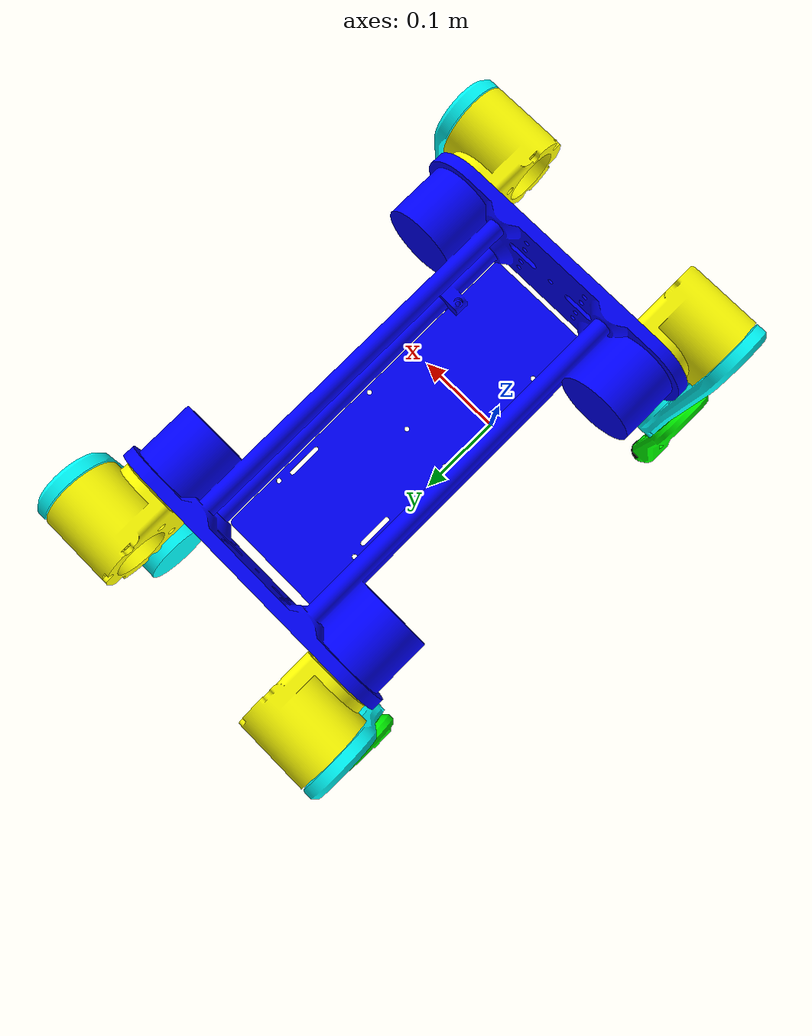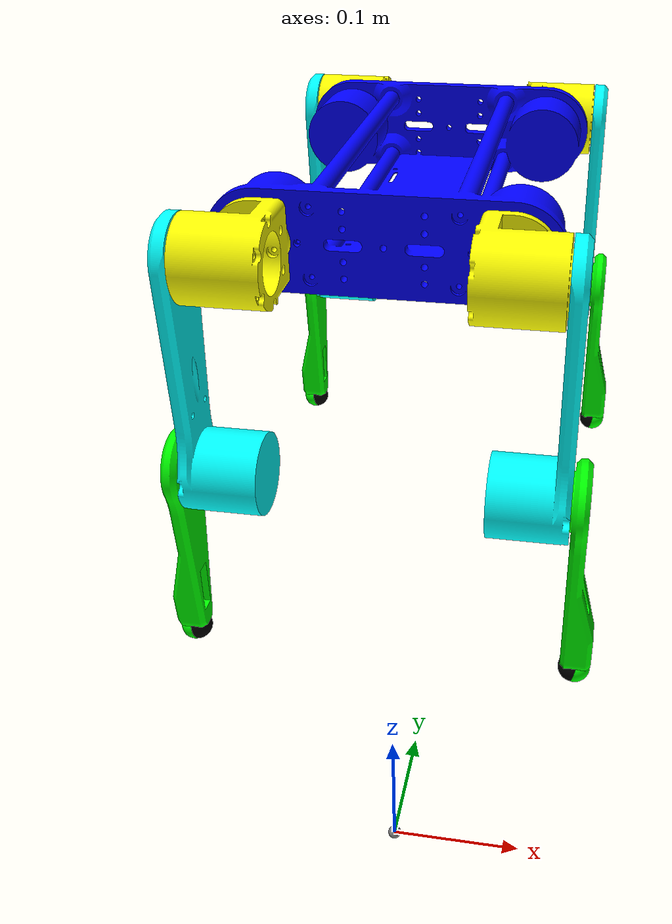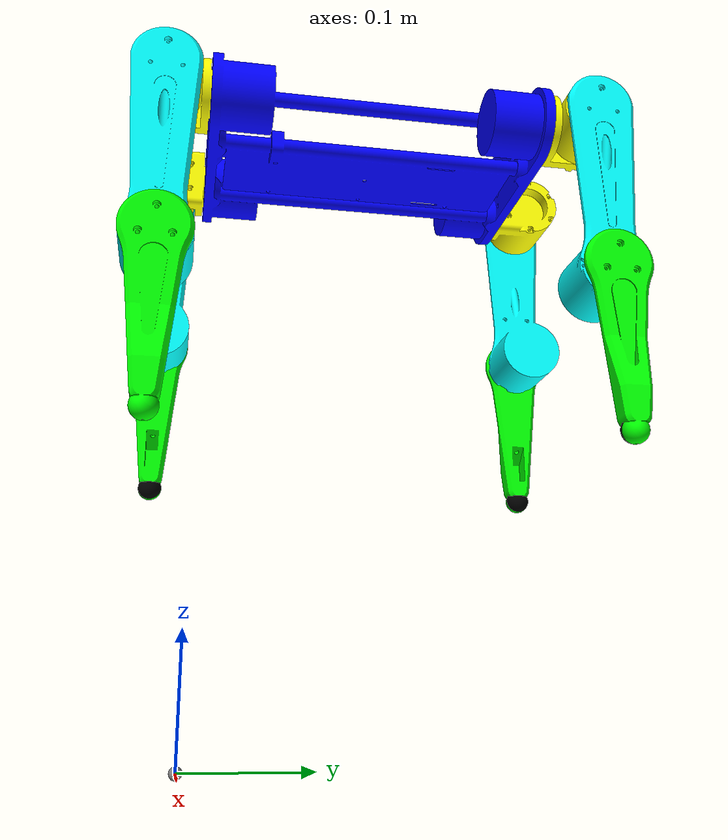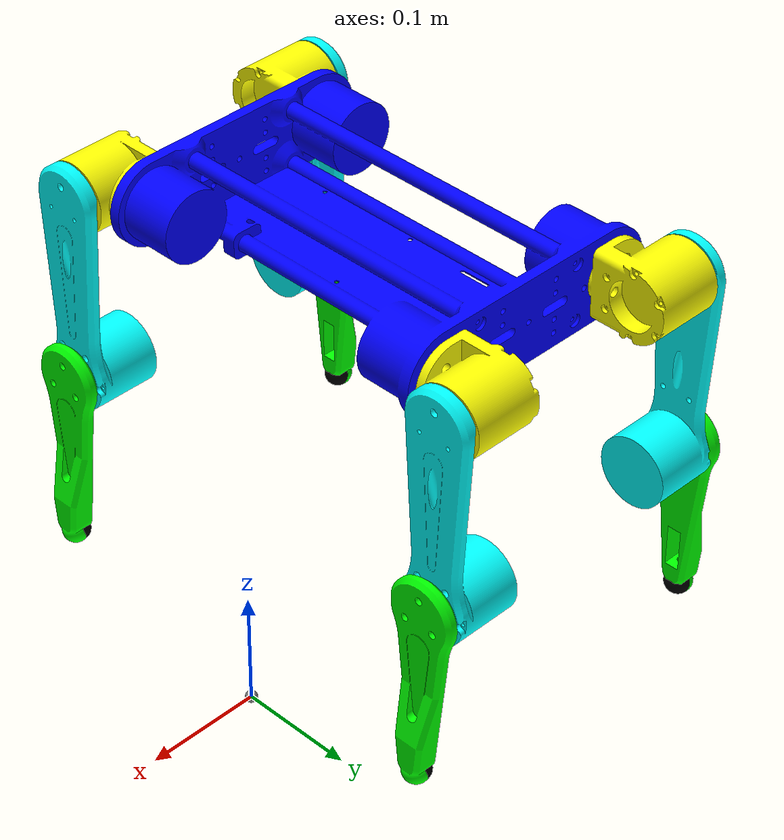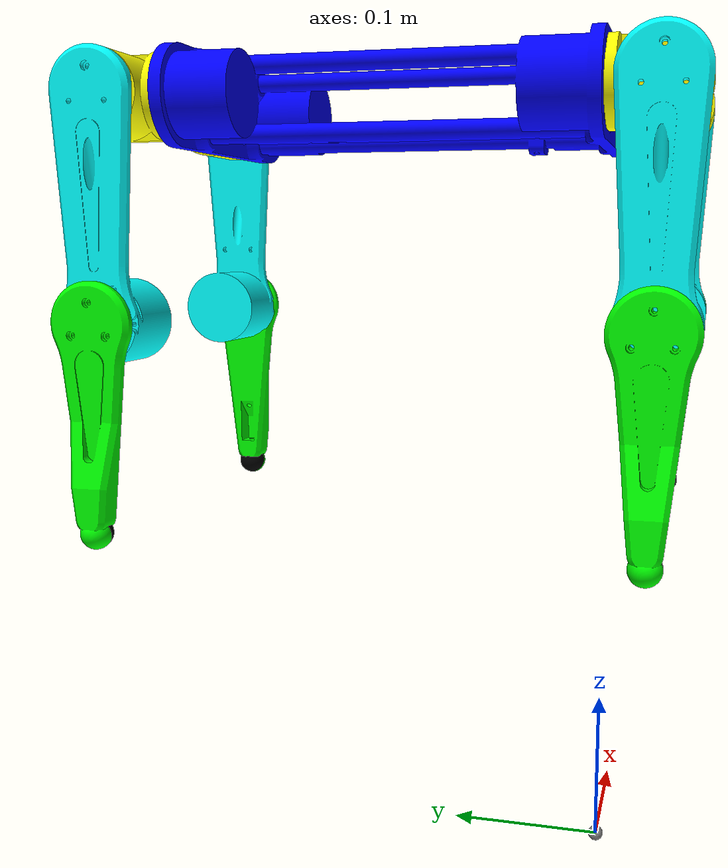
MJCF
<mujoco model="ElectroPup">
  <compiler angle="radian" meshdir="assets" texturedir="assets" autolimits="true" />

  <option timestep="0.010" />

  <visual>
    <rgba contactpoint="1 0 0 1" />

  </visual>

  <default>
    <geom type="mesh" />

    <joint range="-180 180" armature="0.01" damping="1" frictionloss="1" />

    <default class="abductor">
      <joint range="-180 180" />
    </default>

    <default class="hip_front">
      <joint range="-180 180" />
    </default>

    <default class="hip_back">
      <joint range="-180 180" />
    </default>

    <default class="knee">
      <joint range="-180 180" />
    </default>

    <default class="multi_mode_controlled_actuator">
      <general biastype="affine" gainprm="35 0 0 0 0 0 0 0 0 0" biasprm="0 -35 -0.65 0 0 0 0 0 0 0"
        ctrlrange="-10 10" />
    </default>

    <default class="abduction">
      <geom rgba="1 1 0 1" />
    </default>
    <default class="upper_leg">
      <geom rgba="0 1 1 1" />
    </default>
    <default class="lower_leg">
      <geom rgba="0 1 0 1" />
    </default>
    <default class="foot">
      <geom rgba="0 0 0 1"  solimp="0.015 1 0.031" friction="0.8 0.02 0.01" />
    </default>

  </default>

  <asset>
    <mesh file="body.stl" />
    <mesh file="abduction.stl" />
    <mesh file="upper-leg.stl" />
    <mesh file="lower-leg.stl" />
    <mesh file="foot.stl" />
  </asset>

  <worldbody>
    <site name="origin" />
    <body name="chassis">
      <freejoint />
      <camera name="track" pos="0.846 -1.465 0.916" xyaxes="0.866 0.500 0.000 -0.171 0.296 0.940"        mode="trackcom" />

      <inertial pos="0 0.1315 0" mass="2.000" diaginertia="0.048 0.019 0.062" />

      <geom pos="0 0 0.5" rgba="0 0 1 1" mesh="body" contype="0" conaffinity="0" />

      <body name="front_left" pos="0.075 0.0075 0.5" quat="1 0 0 0">
        <inertial pos="0 0 0" quat="1 0 0 0" mass="1.000" diaginertia="0.003316 0.003316 0.0001" />
        <joint class="abductor" name="front_left_abduction" axis="0 1 0" />
        <geom class="abduction" pos="0 0 0" mesh="abduction" />

        <body name="front_left_leg_assembly" pos="0.0345 -0.041 0" quat="1 0 0 0">
          <inertial pos="0 0 0" quat="0 1 0 0" mass="0.500" diaginertia="0.003316 0.003316 0.0001" />
          <joint class="hip_front" name="front_left_hip" axis="1 0 0" />
          <geom class="upper_leg" quat="-1 1 0 0" mesh="upper-leg"  />

          <body name="front_left_lower_leg" pos="0 0 -0.140" quat="1 0 0 0">
            <inertial pos="0 0 0" quat="1 0 0 0" mass="0.125" diaginertia="0.003316 0.003316 0.0001" />
            <joint class="knee" name="front_left_knee" axis="1 0 0" />
            <geom class="lower_leg" pos="0 0 0" quat="-1 1 0 0" mesh="lower-leg" />
            <geom class="foot" pos="0.020 0 -0.130" mesh="foot" />
          </body>

        </body>
      </body>

      <body name="front_right" pos="-0.075 0.0075 0.5" quat="0 0 1 0">
        <inertial pos="0 0 0" quat="1 0 0 0" mass="1.000" diaginertia="0.003316 0.003316 0.0001" />
        <joint class="abductor" name="front_right_abduction" axis="0 -1 0" />
        <geom class="abduction" pos="0 0 0" mesh="abduction" />

        <body name="front_right_leg_assembly" pos="0.0345 -0.041 0" quat="1 0 0 0">
          <inertial pos="0 0 0" quat="1 0 0 0" mass="0.500" diaginertia="0.003316 0.003316 0.0001" />
          <joint class="hip_front" name="front_right_hip" axis="1 0 0" />
          <geom class="upper_leg" quat="1 1 0 0" mesh="upper-leg" />

          <body name="front_right_lower_leg" pos="0 0 0.140" quat="1 0 0 0">
            <inertial pos="0 0 0" quat="1 0 0 0" mass="0.125" diaginertia="0.003316 0.003316 0.0001" />
            <joint class="knee" name="front_right_knee" axis="1 0 0" />
            <geom class="lower_leg" pos="0 0 0" quat="1 1 0 0" mesh="lower-leg" />
            <geom class="foot" pos="0.020 0 0.130" mesh="foot" />
          </body>

        </body>
      </body>

      <body name="back_left" pos="0.075 0.263 0.5" quat="0 1 0 0">
        <inertial pos="0 0 0" quat="1 0 0 0" mass="1.000" diaginertia="0.003316 0.003316 0.0001" />
        <joint class="abductor" name="back_left_abduction" axis="0 -1 0" />
        <geom class="abduction" pos="0 0 0" mesh="abduction" />

        <body name="back_left_leg_assembly" pos="0.0345 -0.041 0" quat="0 1 0 0">
          <inertial pos="0 0 0" quat="1 0 0 0" mass="0.500" diaginertia="0.003316 0.003316 0.0001" />
          <joint class="hip_back" name="back_left_hip" axis="1 0 0" />
          <geom class="upper_leg" quat="-1 1 0 0" mesh="upper-leg" />

          <body name="back_left_lower_leg" pos="0 0 -0.140" quat="1 0 0 0">
            <inertial pos="0 0 0" quat="1 0 0 0" mass="0.125" diaginertia="0.003316 0.003316 0.0001" />
            <joint class="knee" name="back_left_knee" axis="1 0 0" />
            <geom class="lower_leg" pos="0 0 0" quat="-1 1 0 0" mesh="lower-leg" />
            <geom class="foot" pos="0.020 0 -0.130" mesh="foot" />
          </body>

        </body>
      </body>

      <body name="back_right" pos="-0.075 0.263 0.5" quat="0 0 0 1">
        <inertial pos="0 0 0" quat="1 0 0 0" mass="1.000" diaginertia="0.003316 0.003316 0.0001" />
        <joint class="abductor" name="back_right_abduction" axis="0 1 0" />
        <geom class="abduction" pos="0 0 0" mesh="abduction" />

        <body name="back_right_leg_assembly" pos="0.0345 -0.041 0" quat="0 1 0 0">
          <inertial pos="0 0 0" quat="1 0 0 0" mass="0.500" diaginertia="0.003316 0.003316 0.0001" />
          <joint class="hip_back" name="back_right_hip" axis="1 0 0" />
          <geom class="upper_leg" quat="1 1 0 0" mesh="upper-leg" />

          <body name="back_right_lower_leg" pos="0 0 0.140" quat="1 0 0 0">
            <inertial pos="0 0 0" quat="1 0 0 0" mass="0.125" diaginertia="0.003316 0.003316 0.0001" />
            <joint class="knee" name="back_right_knee" axis="1 0 0" />
            <geom class="lower_leg" pos="0 0 0" quat="1 1 0 0" mesh="lower-leg" />
            <geom class="foot" pos="0.020 0 0.130" mesh="foot" />
          </body>

        </body>
      </body>

    </body>
  </worldbody>

  <actuator>
    <general name="front_left_abduction" class="multi_mode_controlled_actuator"
      joint="front_left_abduction" />
    <general name="front_left_hip" class="multi_mode_controlled_actuator" joint="front_left_hip" />
    <general name="front_left_knee" class="multi_mode_controlled_actuator" joint="front_left_knee" />

    <general name="front_right_abduction" class="multi_mode_controlled_actuator"
      joint="front_right_abduction" />
    <general name="front_right_hip" class="multi_mode_controlled_actuator" joint="front_right_hip" />
    <general name="front_right_knee" class="multi_mode_controlled_actuator" joint="front_right_knee" />

    <general name="back_left_abduction" class="multi_mode_controlled_actuator"
      joint="back_left_abduction" />
    <general name="back_left_hip" class="multi_mode_controlled_actuator" joint="back_left_hip" />
    <general name="back_left_knee" class="multi_mode_controlled_actuator" joint="back_left_knee" />

    <general name="back_right_abduction" class="multi_mode_controlled_actuator"
      joint="back_right_abduction" />
    <general name="back_right_hip" class="multi_mode_controlled_actuator" joint="back_right_hip" />
    <general name="back_right_knee" class="multi_mode_controlled_actuator" joint="back_right_knee" />
  </actuator>

  <sensor>
    <jointpos joint="front_left_abduction" name="front_left_abduction_pos" />
    <jointpos joint="front_left_hip" name="front_left_hip_pos" />
    <jointpos joint="front_left_knee" name="front_left_knee_pos" />

    <jointpos joint="front_right_abduction" name="front_right_abduction_pos" />
    <jointpos joint="front_right_hip" name="front_right_hip_pos" />
    <jointpos joint="front_right_knee" name="front_right_knee_pos" />

    <jointpos joint="back_left_abduction" name="back_left_abduction_pos" />
    <jointpos joint="back_left_hip" name="back_left_hip_pos" />
    <jointpos joint="back_left_knee" name="back_left_knee_pos" />

    <jointpos joint="back_right_abduction" name="back_right_abduction_pos" />
    <jointpos joint="back_right_hip" name="back_right_hip_pos" />
    <jointpos joint="back_right_knee" name="back_right_knee_pos" />

    <jointvel joint="front_left_abduction" name="front_left_abduction_vel" />
    <jointvel joint="front_left_hip" name="front_left_hip_vel" />
    <jointvel joint="front_left_knee" name="front_left_knee_vel" />

    <jointpos joint="front_right_abduction" name="front_right_abduction_vel" />
    <jointpos joint="front_right_hip" name="front_right_hip_vel" />
    <jointpos joint="front_right_knee" name="front_right_knee_vel" />

    <jointvel joint="back_left_abduction" name="back_left_abduction_vel" />
    <jointvel joint="back_left_hip" name="back_left_hip_vel" />
    <jointvel joint="back_left_knee" name="back_left_knee_vel" />

    <jointvel joint="back_right_abduction" name="back_right_abduction_vel" />
    <jointvel joint="back_right_hip" name="back_right_hip_vel" />
    <jointvel joint="back_right_knee" name="back_right_knee_vel" />

    <gyro site="origin" name="gyro" />
    <accelerometer site="origin" name="accelerometer" />
    <framequat objtype="site" objname="origin" name="orientation" />
  </sensor>

  <keyframe>

    <key name="standing"
      qpos="0 0 0 0 0 0 0 0 0 0 0 0 0 0 0 0 0 0 0"
      ctrl="
      0 -1.5708 0
      0 -1.5708 0
      0 -1.5708 0
      0 -1.5708 0
      " />
  </keyframe>
</mujoco>
